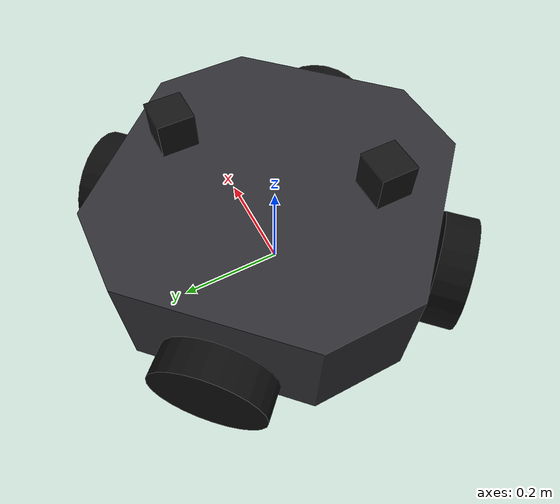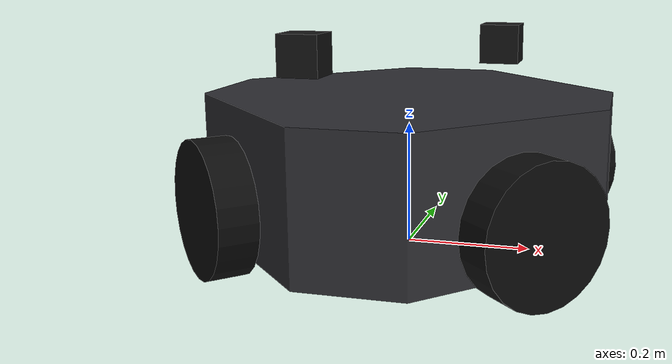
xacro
<?xml version="1.0"?>
<robot name="robot_a" xmlns:xacro="http://www.ros.org/wiki/xacro">

  <!-- ==================== 可调参数（全部来自 PDF 或文档化的假设） ==================== -->
  <xacro:arg name="half_x"        default="0.3215"/>
  <xacro:arg name="half_y"        default="0.3280"/>
  <xacro:arg name="face_dist"     default="0.2900"/>   <!-- 45° 斜面法向距离（轮内侧留 13 mm 支架间隙） -->
  <xacro:arg name="body_height"   default="0.2260"/>   <!-- 251 − 25 离地 -->
  <xacro:arg name="ground_clear"  default="0.0250"/>
  <xacro:arg name="wheel_radius"  default="0.1050"/>   <!-- 8 寸 = 210 mm -->
  <xacro:arg name="wheel_width"   default="0.0600"/>   <!-- 假设 -->
  <xacro:arg name="wheel_center_r" default="0.23546"/> <!-- 轮心 |x|=|y|：e=726/2−W/2=333 mm，c=e/√2 -->
  <xacro:arg name="chassis_mass"  default="48.47"/>
  <xacro:arg name="wheel_mass"    default="4.0"/>
  <xacro:arg name="wheel_effort"  default="20.0"/>
  <xacro:arg name="max_speed"     default="2.0"/>
  <xacro:arg name="lidar_mass"    default="0.265"/>
  <xacro:arg name="lidar_size"    default="0.065"/>
  <xacro:arg name="lidar_offset"  default="0.130"/>    <!-- 对角 |x|=|y|，假设 -->
  <xacro:arg name="lidar_mast"    default="0.040"/>    <!-- 支座高，假设 -->
  <xacro:arg name="mesh_dir"      default="package://robot_description/meshes"/>

  <xacro:property name="half_x"         value="$(arg half_x)"/>
  <xacro:property name="half_y"         value="$(arg half_y)"/>
  <xacro:property name="face_dist"      value="$(arg face_dist)"/>
  <xacro:property name="body_height"    value="$(arg body_height)"/>
  <xacro:property name="ground_clear"   value="$(arg ground_clear)"/>
  <xacro:property name="wheel_radius"   value="$(arg wheel_radius)"/>
  <xacro:property name="wheel_width"    value="$(arg wheel_width)"/>
  <xacro:property name="wheel_center_r" value="$(arg wheel_center_r)"/>
  <xacro:property name="chassis_mass"   value="$(arg chassis_mass)"/>
  <xacro:property name="wheel_mass"     value="$(arg wheel_mass)"/>
  <xacro:property name="wheel_effort"   value="$(arg wheel_effort)"/>
  <xacro:property name="lidar_mass"     value="$(arg lidar_mass)"/>
  <xacro:property name="lidar_size"     value="$(arg lidar_size)"/>
  <xacro:property name="lidar_offset"   value="$(arg lidar_offset)"/>
  <xacro:property name="lidar_mast"     value="$(arg lidar_mast)"/>
  <xacro:property name="mesh_dir"       value="$(arg mesh_dir)"/>

  <!-- 派生量 -->
  <xacro:property name="base_link_z"   value="${wheel_radius}"/>                      <!-- 轮轴平面离地 -->
  <xacro:property name="body_bottom_z" value="${ground_clear - wheel_radius}"/>       <!-- 相对 base_link -->
  <xacro:property name="body_top_z"    value="${body_bottom_z + body_height}"/>
  <xacro:property name="body_center_z" value="${body_bottom_z + body_height/2.0}"/>
  <xacro:property name="wheel_vel_max" value="${1.05 * 2.0 / wheel_radius}"/>

  <!-- 惯量宏 -->
  <xacro:macro name="box_inertia" params="m l w h">
    <inertia ixx="${m*(w*w + h*h)/12.0}" ixy="0" ixz="0"
             iyy="${m*(l*l + h*h)/12.0}" iyz="0" izz="${m*(l*l + w*w)/12.0}"/>
  </xacro:macro>
  <xacro:macro name="cyl_inertia_z" params="m r l">
    <inertia ixx="${m*(3*r*r + l*l)/12.0}" ixy="0" ixz="0"
             iyy="${m*(3*r*r + l*l)/12.0}" iyz="0" izz="${m*r*r/2.0}"/>
  </xacro:macro>

  <!-- ==================== 基座坐标系 ==================== -->
  <link name="base_footprint"/>
  <joint name="base_footprint_joint" type="fixed">
    <parent link="base_footprint"/>
    <child link="base_link"/>
    <origin xyz="0 0 ${base_link_z}" rpy="0 0 0"/>
  </joint>

  <!-- ==================== 八边形车体（网格：凸体，碰撞用凸包即精确） ==================== -->
  <link name="base_link">
    <inertial>
      <origin xyz="0 0 ${body_center_z}" rpy="0 0 0"/>
      <mass value="${chassis_mass}"/>
      <!-- 八边形近似为等包络长方体（偏保守），见 docs/engineering/robot_model.md -->
      <xacro:box_inertia m="${chassis_mass}" l="${2*half_x}" w="${2*half_y}" h="${body_height}"/>
    </inertial>
    <visual>
      <origin xyz="0 0 0" rpy="0 0 0"/>
      <geometry>
        <mesh filename="${mesh_dir}/agl_chassis_octagon.stl"/>
      </geometry>
      <material name="chassis_black">
        <color rgba="0.18 0.18 0.20 1.0"/>
      </material>
    </visual>
    <collision>
      <origin xyz="0 0 0" rpy="0 0 0"/>
      <geometry>
        <mesh filename="${mesh_dir}/agl_chassis_octagon.stl"/>
      </geometry>
    </collision>
  </link>

  <!-- 顶部中央安装板（人形上装接口 254 × 190）：只建坐标帧，不建几何 -->
  <link name="mount_plate_link"/>
  <joint name="base_mount_plate_joint" type="fixed">
    <parent link="base_link"/>
    <child link="mount_plate_link"/>
    <origin xyz="0 0 ${body_top_z}" rpy="0 0 0"/>
  </joint>

  <xacro:macro name="omni_wheel" params="name cx cy yaw_axis_deg">
    <link name="wheel_${name}_link">
      <inertial>
        <origin xyz="0 0 0" rpy="0 0 0"/>
        <mass value="${wheel_mass}"/>
        <xacro:cyl_inertia_z m="${wheel_mass}" r="${wheel_radius}" l="${wheel_width}"/>
      </inertial>
      <visual>
        <origin xyz="0 0 0" rpy="0 0 0"/>
        <geometry>
          <cylinder radius="${wheel_radius}" length="${wheel_width}"/>
        </geometry>
        <material name="wheel_black">
          <color rgba="0.05 0.05 0.05 1.0"/>
        </material>
      </visual>
      <collision>
        <origin xyz="0 0 0" rpy="0 0 0"/>
        <geometry>
          <cylinder radius="${wheel_radius}" length="${wheel_width}"/>
        </geometry>
      </collision>
    </link>
    <joint name="base_wheel_${name}_joint" type="continuous">
      <parent link="base_link"/>
      <child link="wheel_${name}_link"/>
      <origin xyz="${cx} ${cy} 0" rpy="${pi/2} 0 ${yaw_axis_deg*pi/180}"/>
      <axis xyz="0 0 1"/>
      <limit effort="${wheel_effort}" velocity="${wheel_vel_max}"/>
      <dynamics damping="0.05" friction="0.0"/>
    </joint>
  </xacro:macro>

  <xacro:omni_wheel name="fl" cx="${ wheel_center_r}" cy="${ wheel_center_r}" yaw_axis_deg="135"/>
  <xacro:omni_wheel name="fr" cx="${ wheel_center_r}" cy="${-wheel_center_r}" yaw_axis_deg="45"/>
  <xacro:omni_wheel name="rl" cx="${-wheel_center_r}" cy="${ wheel_center_r}" yaw_axis_deg="225"/>
  <xacro:omni_wheel name="rr" cx="${-wheel_center_r}" cy="${-wheel_center_r}" yaw_axis_deg="315"/>

  <!-- ==================== 感知：2 × 3D 固态雷达（对角）+ IMU ====================
       假设：安装在顶部对角 (±lidar_offset, ±lidar_offset)，支座高 lidar_mast。
       PDF 只写「对角安装 360° 扫描 −7~52°、40 m@10%」，未给坐标（E08 复核）。
  -->
  <xacro:macro name="solid_state_lidar" params="name sx sy">
    <link name="${name}_link">
      <inertial>
        <origin xyz="0 0 0" rpy="0 0 0"/>
        <mass value="${lidar_mass}"/>
        <xacro:box_inertia m="${lidar_mass}" l="${lidar_size}" w="${lidar_size}" h="${lidar_size}"/>
      </inertial>
      <visual>
        <origin xyz="0 0 0" rpy="0 0 0"/>
        <geometry>
          <box size="${lidar_size} ${lidar_size} ${lidar_size}"/>
        </geometry>
        <material name="sensor_dark">
          <color rgba="0.08 0.08 0.08 1"/>
        </material>
      </visual>
      <!-- 感知器件不参与碰撞 -->
    </link>
    <joint name="base_${name}_joint" type="fixed">
      <parent link="base_link"/>
      <child link="${name}_link"/>
      <origin xyz="${sx*lidar_offset} ${sy*lidar_offset} ${body_top_z + lidar_mast + lidar_size/2.0}"
              rpy="0 0 0"/>
    </joint>
  </xacro:macro>

  <xacro:solid_state_lidar name="lidar_front" sx="1"  sy="1"/>
  <xacro:solid_state_lidar name="lidar_rear"  sx="-1" sy="-1"/>

  <!-- IMU：PDF 2.5 明确集成于 3D 雷达内（200 Hz） -->
  <link name="imu_link"/>
  <joint name="lidar_front_imu_joint" type="fixed">
    <parent link="lidar_front_link"/>
    <child link="imu_link"/>
    <origin xyz="0 0 0" rpy="0 0 0"/>
  </joint>

</robot>
